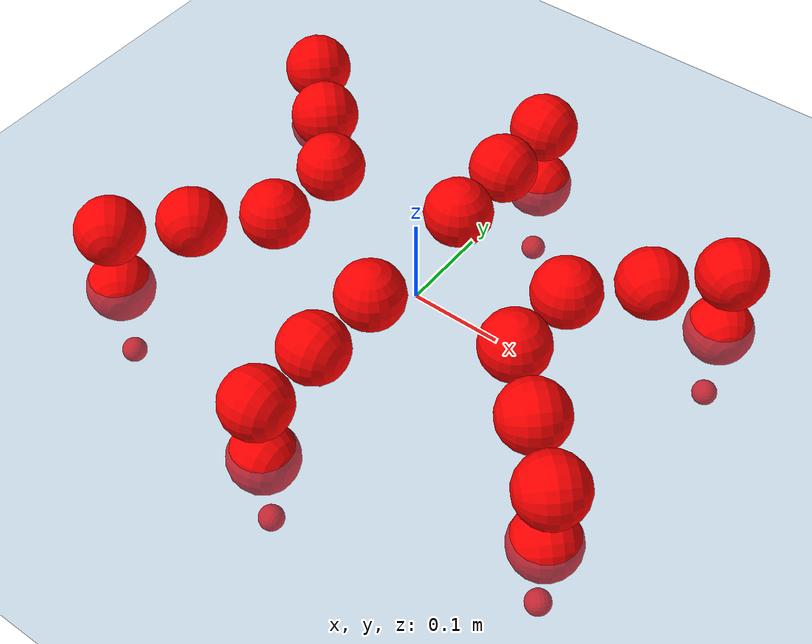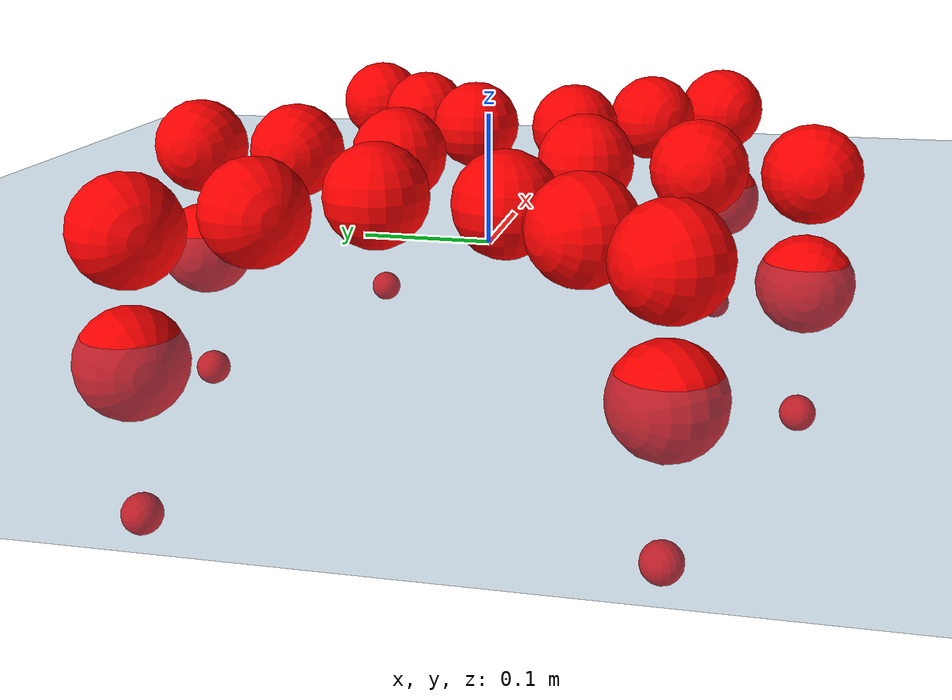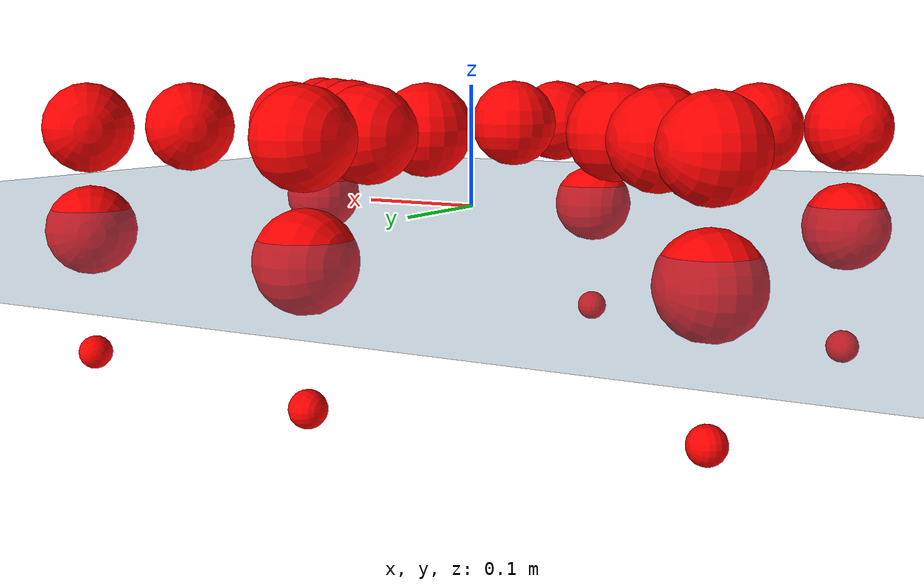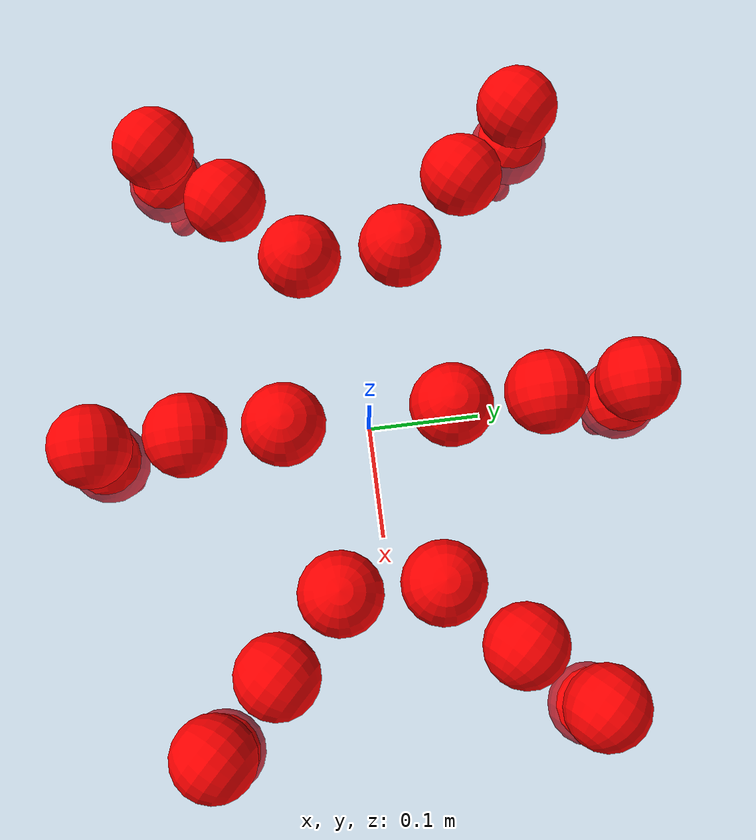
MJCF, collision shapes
<mujoco model="Golem">
  <compiler angle="radian" assetdir="assets" balanceinertia="true" inertiafromgeom="false"/>

  <option timestep="0.005" density="1.2" viscosity="2e-05"/>

  <size nkey="1"/>

  <visual>
    <quality shadowsize="8192"/>
    <map shadowclip="0.5"/>
  </visual>

  <default>
    <default class="/">
      <joint armature="0.01" damping="0.01" frictionloss="0.01"/>
      <geom contype="0" conaffinity="0" group="1" solref="-1000 -80"/>
      <site size="0.01 0.005 0.005" group="5"/>
      <general forcelimited="true" biastype="affine" gainprm="25" biasprm="0 -25 -0.5"/>
      <default class="visual">
        <geom type="mesh" group="2"/>
      </default>
      <default class="collision">
        <geom group="3"/>
      </default>
      <default class="foot">
        <geom size="0.01 0 0" condim="6" group="4" priority="1" solimp="0.015 1 0.01"/>
      </default>
      <default class="reward_collision_sphere">
        <geom group="5" rgba="1 0 0 1"/>
      </default>
    </default>
  </default>

  <asset>
    <texture type="skybox" colorspace="auto" name="//unnamed_texture_0" builtin="gradient" rgb1="0.95 0.95 0.95" rgb2="0.95 0.95 0.95" width="100" height="600"/>
    <texture type="2d" colorspace="auto" name="texplane" builtin="checker" rgb1="0.345 0.575 0.748" rgb2="0.345 0.575 0.748" markrgb="1 1 1" width="512" height="512"/>
    <material name="MatPlane" class="/" texture="texplane" texuniform="true" texrepeat="2 2" specular="0.9"/>
    <mesh name="body" class="/" file="body.stl" scale="0.001 0.001 0.001"/>
    <mesh name="coxa" class="/" file="coxa.stl" scale="0.001 0.001 0.001"/>
    <mesh name="femur" class="/" file="femur.stl" scale="0.001 0.001 0.001"/>
    <mesh name="tibia" class="/" file="tibia.stl" scale="0.001 0.001 0.001"/>
    <mesh name="tarsus" class="/" file="tarsus.stl" scale="0.001 0.001 0.001"/>
  </asset>

  <worldbody>
    <geom name="floor" class="/" size="100 100 0.125" type="plane" group="0" material="MatPlane"/>
    <light name="toplight_shadow" class="/" pos="0 0 5" dir="0.0990148 0.0990148 -0.990148" type="directional" ambient="0.04 0.04 0.04" diffuse="0.55 0.55 0.55" specular="0.12 0.12 0.12"/>
    <light name="toplight_fill" class="/" pos="0 0 5" dir="0.0990148 0.0990148 -0.990148" type="directional" castshadow="false" ambient="0.04 0.04 0.04" diffuse="0.3 0.3 0.3" specular="0.08 0.08 0.08"/>
    <body name="trunk" pos="0.000650327 -0.000283921 -0.000603839" quat="1 6.95367e-05 -3.8084e-06 -7.76978e-05">
      <inertial pos="-0.000570628 -0.000432683 -0.00372317" quat="0.999993 -0.00183926 -0.00192118 0.00281113" mass="2.84727" diaginertia="0.0077599 0.00259854 0.0121342"/>
      <joint name="//unnamed_joint_0" type="free"/>
      <geom name="//unnamed_geom_1" class="/" pos="0 0 0.0666165" quat="1 0 0 0" type="mesh" rgba="0.9 0.9 0.9 1" mesh="body"/>
      <site name="imu" class="/" pos="0.122668 0.000540848 0.105747" size="0.00920004"/>
      <camera name="track" class="/" pos="0 -1.53154 0" quat="0.707107 0.707107 0 0" mode="trackcom"/>
      <camera name="ego_camera" class="/" pos="0.123937 0 0.104088" quat="-0.5 -0.5 0.5 0.5"/>
      <body name="coxa_RR" pos="-0.169983 -0.0637803 0.0660428" quat="0.382682 -7.60961e-06 9.81681e-06 -0.92388">
        <inertial pos="-0.000128167 -0.000478494 7.60125e-05" quat="0.999997 -0.00167725 -0.00179502 -0.000519215" mass="0.15331" diaginertia="0.00784859 0.0025941 0.0120639"/>
        <joint name="coxa_joint_RR" class="/" pos="0 0 0" axis="0.00174195 0.000760386 -0.999998" range="-3.13916 3.15561" armature="0.00960817" damping="0.0101944" frictionloss="0.00925954"/>
        <geom name="//unnamed_geom_2" class="/" type="mesh" rgba="0.2 0.2 0.2 1" mesh="coxa"/>
        <geom name="//unnamed_geom_3" class="reward_collision_sphere" size="0.0368002" pos="-0.0286008 0 0"/>
        <body name="femur_RR" pos="0.0567936 -2.38427e-05 0.000287824" quat="0.499991 -0.500019 0.500391 0.499599">
          <inertial pos="-0.000433202 -0.000895581 0.000829499" quat="1 -0.000574435 0.000110847 0.000175291" mass="0.155781" diaginertia="0.00789911 0.00264679 0.0122311"/>
          <joint name="femur_joint_RR" class="/" pos="0 0 0" axis="-0.000341292 0.000406876 -1" stiffness="0.000988494" range="-3.1306 3.13577" armature="0.00960701" damping="0" frictionloss="0.00882904"/>
          <geom name="//unnamed_geom_4" class="/" type="mesh" rgba="0.9 0.9 0.9 1" mesh="femur"/>
          <geom name="//unnamed_geom_5" class="reward_collision_sphere" size="0.0368002"/>
          <body name="tibia_RR" pos="0.000860985 -0.0830817 0.000610797" quat="-1.66281e-05 1 -0.000345001 -0.000207135">
            <inertial pos="0.000401962 0.000976418 0.000128186" quat="0.999994 0.00277312 0.000810004 0.00184296" mass="0.155796" diaginertia="0.00788925 0.00262514 0.0121176"/>
            <joint name="tibia_joint_RR" class="/" pos="0 0 0" axis="-0.00570697 -0.000171842 0.999984" range="-3.14794 3.14577" armature="0.00951344" damping="0.00173887" frictionloss="0.00916406"/>
            <geom name="//unnamed_geom_6" class="/" type="mesh" rgba="0.2 0.2 0.2 1" mesh="tibia"/>
            <geom name="//unnamed_geom_7" class="reward_collision_sphere" size="0.0368002"/>
            <body name="tarsus_RR" pos="0.0831596 0.000505857 2.05324e-05" quat="1 -8.32077e-05 -6.63851e-05 -7.72096e-05">
              <inertial pos="0.0577949 0.00048343 0.00071834" quat="0.500002 0.499435 0.499702 0.50086" mass="0.156985" diaginertia="0.00790892 0.00262053 0.0122806"/>
              <joint name="tarsus_joint_RR" class="/" pos="0 0 0" axis="0.00170114 0.00188089 0.999997" range="-3.13402 3.13741" armature="0.00883075" damping="0.00860681" frictionloss="0.00893422"/>
              <geom name="//unnamed_geom_8" class="/" type="mesh" rgba="0.9 0.9 0.9 1" mesh="tarsus"/>
              <geom name="foot_1" class="foot" size="0.0093571" pos="0.106776 0 0" quat="0 -0.707107 0 0.707107"/>
              <geom name="//unnamed_geom_10" class="reward_collision_sphere" size="0.0368002"/>
              <geom name="//unnamed_geom_11" class="reward_collision_sphere" size="0.0138001" pos="0.102486 0 0"/>
              <site name="foot_1" class="foot" pos="0.106776 0 0" quat="0 -0.707107 0 0.707107" size="0.00920004"/>
            </body>
          </body>
        </body>
      </body>
      <body name="coxa_RM" pos="-0.000636618 -0.10263 0.0667345" quat="0.707114 -0.000250126 0.000305358 -0.707099">
        <inertial pos="0.000369817 -9.10928e-06 0.000848347" quat="0.999999 0.000789841 0.000361126 0.000870524" mass="0.155523" diaginertia="0.00771879 0.00261932 0.0122305"/>
        <joint name="coxa_joint_RM" class="/" pos="0 0 0" axis="-7.60434e-05 0.000138603 -1" range="-3.15626 3.13781" armature="0.00935124" damping="0.0111171" frictionloss="0.00922263"/>
        <geom name="//unnamed_geom_12" class="/" type="mesh" rgba="0.2 0.2 0.2 1" mesh="coxa"/>
        <geom name="//unnamed_geom_13" class="reward_collision_sphere" size="0.0368002" pos="-0.0286008 0 0"/>
        <body name="femur_RM" pos="0.0564943 -0.00116991 -0.000891569" quat="0.500001 -0.500004 0.500003 0.499992">
          <inertial pos="-0.000457103 0.000348473 -0.000333881" quat="1 0.000155149 0.000155644 -0.000511829" mass="0.154923" diaginertia="0.00783363 0.00263622 0.0121743"/>
          <joint name="femur_joint_RM" class="/" pos="0 0 0" axis="-0.00198014 -0.000447147 -0.999998" range="-3.14053 3.13921" armature="0.00921405" damping="0.0117692" frictionloss="0.00935769"/>
          <geom name="//unnamed_geom_14" class="/" type="mesh" rgba="0.9 0.9 0.9 1" mesh="femur"/>
          <geom name="//unnamed_geom_15" class="reward_collision_sphere" size="0.0368002"/>
          <body name="tibia_RM" pos="0.000753486 -0.0820813 -0.000417481" quat="-3.62067e-05 1 2.00304e-05 0.000241123">
            <inertial pos="0.000370535 0.000193322 -0.000182748" quat="0.999997 0.00156182 -4.80452e-05 0.00191132" mass="0.156655" diaginertia="0.00791451 0.00264858 0.0121631"/>
            <joint name="tibia_joint_RM" class="/" pos="0 0 0" axis="-0.00305181 0.00124754 0.999995" range="-3.15645 3.11507" armature="0.00893752" damping="0" frictionloss="0.0090559"/>
            <geom name="//unnamed_geom_16" class="/" type="mesh" rgba="0.2 0.2 0.2 1" mesh="tibia"/>
            <geom name="//unnamed_geom_17" class="reward_collision_sphere" size="0.0368002"/>
            <body name="tarsus_RM" pos="0.0831762 -0.000598825 -0.000517074" quat="1 7.46318e-05 0.000140889 0.00033607">
              <inertial pos="0.0566508 0.000830741 2.52718e-05" quat="0.499972 0.499925 0.500086 0.500017" mass="0.155562" diaginertia="0.00794092 0.00267566 0.0124517"/>
              <joint name="tarsus_joint_RM" class="/" pos="0 0 0" axis="0.00316722 -0.0046707 0.999984" range="-3.14118 3.12881" armature="0.00877301" damping="0.00421764" frictionloss="0.00916937"/>
              <geom name="//unnamed_geom_18" class="/" type="mesh" rgba="0.9 0.9 0.9 1" mesh="tarsus"/>
              <geom name="foot_2" class="foot" size="0.00911069" pos="0.106776 0 0" quat="0 -0.707107 0 0.707107"/>
              <geom name="//unnamed_geom_20" class="reward_collision_sphere" size="0.0368002"/>
              <geom name="//unnamed_geom_21" class="reward_collision_sphere" size="0.0138001" pos="0.102486 0 0"/>
              <site name="foot_2" class="foot" pos="0.106776 0 0" quat="0 -0.707107 0 0.707107" size="0.00920004"/>
            </body>
          </body>
        </body>
      </body>
      <body name="coxa_RF" pos="0.16867 -0.0627756 0.0671066" quat="0.923953 0.000249851 -0.000242541 -0.382505">
        <inertial pos="0.000166213 0.000450314 3.30602e-05" quat="0.99999 0.00371296 0.00168461 0.00187744" mass="0.158229" diaginertia="0.00807931 0.00263151 0.0125302"/>
        <joint name="coxa_joint_RF" class="/" pos="0 0 0" axis="0.00083139 -0.0063131 -0.99998" range="-3.12103 3.13641" armature="0.00946555" damping="0.00525413" frictionloss="0.00877993"/>
        <geom name="//unnamed_geom_22" class="/" type="mesh" rgba="0.2 0.2 0.2 1" mesh="coxa"/>
        <geom name="//unnamed_geom_23" class="reward_collision_sphere" size="0.0368002" pos="-0.0286008 0 0"/>
        <body name="femur_RF" pos="0.0568287 0.000693315 0.000650746" quat="0.500044 -0.499965 0.499979 0.500012">
          <inertial pos="-9.45924e-05 0.00066011 0.000279052" quat="1 0.000375871 -0.00012277 -0.000710529" mass="0.154362" diaginertia="0.00781886 0.00259705 0.0122046"/>
          <joint name="femur_joint_RF" class="/" pos="0 0 0" axis="-0.00118899 0.00023078 -0.999999" range="-3.14686 3.1307" armature="0.00872513" damping="0.0123744" frictionloss="0.00880518"/>
          <geom name="//unnamed_geom_24" class="/" type="mesh" rgba="0.9 0.9 0.9 1" mesh="femur"/>
          <geom name="//unnamed_geom_25" class="reward_collision_sphere" size="0.0368002"/>
          <body name="tibia_RF" pos="5.07325e-05 -0.0822756 9.96466e-05" quat="4.74787e-07 1 -1.10204e-06 1.0567e-05">
            <inertial pos="-0.000228894 -0.000273924 -8.08202e-05" quat="0.999999 -0.000376769 -0.000779876 0.00130452" mass="0.157283" diaginertia="0.00802097 0.00266297 0.0123658"/>
            <joint name="tibia_joint_RF" class="/" pos="0 0 0" axis="-0.0016552 -0.0026596 0.999995" stiffness="0.000493406" range="-3.15732 3.13244" armature="0.00925592" damping="0" frictionloss="0.00878193"/>
            <geom name="//unnamed_geom_26" class="/" type="mesh" rgba="0.2 0.2 0.2 1" mesh="tibia"/>
            <geom name="//unnamed_geom_27" class="reward_collision_sphere" size="0.0368002"/>
            <body name="tarsus_RF" pos="0.0830616 0.000289751 0.000743529" quat="1 0.000167887 0.000233191 -0.000350613">
              <inertial pos="0.0570909 0.00112774 0.000119197" quat="0.496137 0.498758 0.502751 0.502324" mass="0.158233" diaginertia="0.0079587 0.00263158 0.0122346"/>
              <joint name="tarsus_joint_RF" class="/" pos="0 0 0" axis="-0.000527722 0.000669752 1" range="-3.148 3.13609" armature="0.00898036" damping="0.00842551" frictionloss="0.00929713"/>
              <geom name="//unnamed_geom_28" class="/" type="mesh" rgba="0.9 0.9 0.9 1" mesh="tarsus"/>
              <geom name="foot_3" class="foot" size="0.00916905" pos="0.106776 0 0" quat="0 -0.707107 0 0.707107"/>
              <geom name="//unnamed_geom_30" class="reward_collision_sphere" size="0.0368002"/>
              <geom name="//unnamed_geom_31" class="reward_collision_sphere" size="0.0138001" pos="0.102486 0 0"/>
              <site name="foot_3" class="foot" pos="0.106776 0 0" quat="0 -0.707107 0 0.707107" size="0.00920004"/>
            </body>
          </body>
        </body>
      </body>
      <body name="coxa_LR" pos="-0.168682 0.0660897 0.0674265" quat="0.382847 6.22577e-05 9.13864e-06 0.923812">
        <inertial pos="-0.000236469 -0.000263736 0.00116574" quat="0.999997 -0.000993208 0.00216166 -0.000734843" mass="0.157777" diaginertia="0.00782422 0.00264931 0.0122049"/>
        <joint name="coxa_joint_LR" class="/" pos="0 0 0" axis="-0.00163176 0.0018908 -0.999997" range="-3.1406 3.12523" armature="0.00895458" damping="0.00972839" frictionloss="0.00912026"/>
        <geom name="//unnamed_geom_32" class="/" type="mesh" rgba="0.2 0.2 0.2 1" mesh="coxa"/>
        <geom name="//unnamed_geom_33" class="reward_collision_sphere" size="0.0368002" pos="-0.0286008 0 0"/>
        <body name="femur_LR" pos="0.0584054 -0.00220175 -0.000974267" quat="0.500174 -0.499775 0.500213 0.499838">
          <inertial pos="-7.63951e-05 -0.000612669 0.000190838" quat="1 6.48304e-05 -8.92828e-06 1.03588e-05" mass="0.154725" diaginertia="0.00771284 0.00260645 0.0120931"/>
          <joint name="femur_joint_LR" class="/" pos="0 0 0" axis="0.00022542 0.00206868 0.999998" range="-3.12368 3.15252" armature="0.00976501" damping="0.0107824" frictionloss="0.00933125"/>
          <geom name="//unnamed_geom_34" class="/" type="mesh" rgba="0.9 0.9 0.9 1" mesh="femur"/>
          <geom name="//unnamed_geom_35" class="reward_collision_sphere" size="0.0368002"/>
          <body name="tibia_LR" pos="0.000816775 -0.0843147 -0.000385789" quat="-5.99824e-05 1 7.04528e-05 -6.07531e-05">
            <inertial pos="-0.000308788 -9.0796e-05 0.000159892" quat="0.999992 0.000605131 0.00404783 -0.00027815" mass="0.158502" diaginertia="0.00804382 0.00262987 0.0122433"/>
            <joint name="tibia_joint_LR" class="/" pos="0 0 0" axis="0.00193682 0.000404828 -0.999998" range="-3.14221 3.13848" armature="0.00921871" damping="0.00309545" frictionloss="0.00882118"/>
            <geom name="//unnamed_geom_36" class="/" type="mesh" rgba="0.2 0.2 0.2 1" mesh="tibia"/>
            <geom name="//unnamed_geom_37" class="reward_collision_sphere" size="0.0368002"/>
            <body name="tarsus_LR" pos="0.0853619 0.00161011 0.00130354" quat="1 -0.000235887 0.000240026 0.000323888">
              <inertial pos="0.0593174 -0.000465626 0.000687985" quat="0.500674 0.498916 0.500758 0.499649" mass="0.157473" diaginertia="0.00786591 0.00260277 0.0122838"/>
              <joint name="tarsus_joint_LR" class="/" pos="0 0 0" axis="0.00083633 -0.00423513 -0.999991" range="-3.12738 3.13896" armature="0.00934812" damping="0.0268847" frictionloss="0.00932895"/>
              <geom name="//unnamed_geom_38" class="/" type="mesh" rgba="0.9 0.9 0.9 1" mesh="tarsus"/>
              <geom name="foot_4" class="foot" size="0.00937147" pos="0.106776 0 0" quat="0.707107 0 -0.707107 0"/>
              <geom name="//unnamed_geom_40" class="reward_collision_sphere" size="0.0368002"/>
              <geom name="//unnamed_geom_41" class="reward_collision_sphere" size="0.0138001" pos="0.102486 0 0"/>
              <site name="foot_4" class="foot" pos="0.106776 0 0" quat="0.707107 0 -0.707107 0" size="0.00920004"/>
            </body>
          </body>
        </body>
      </body>
      <body name="coxa_LM" pos="-8.65862e-05 0.100321 0.0668146" quat="0.707035 0.00042337 -0.000159225 0.707178">
        <inertial pos="-0.000621267 -0.000169322 -0.000156521" quat="0.999991 0.00344867 0.00237636 0.000286202" mass="0.156805" diaginertia="0.00786401 0.00266295 0.0122997"/>
        <joint name="coxa_joint_LM" class="/" pos="0 0 0" axis="0.000990745 0.00057519 -0.999999" range="-3.15216 3.15516" armature="0.00924398" damping="0.00885456" frictionloss="0.00910443"/>
        <geom name="//unnamed_geom_42" class="/" type="mesh" rgba="0.2 0.2 0.2 1" mesh="coxa"/>
        <geom name="//unnamed_geom_43" class="reward_collision_sphere" size="0.0368002" pos="-0.0286008 0 0"/>
        <body name="femur_LM" pos="0.0542506 0.00108167 6.6689e-05" quat="0.500026 -0.499967 0.499987 0.50002">
          <inertial pos="-0.000871225 -0.000679214 0.000789066" quat="1 -0.000108417 5.7636e-05 -0.000239832" mass="0.155541" diaginertia="0.00777882 0.00261839 0.01206"/>
          <joint name="femur_joint_LM" class="/" pos="0 0 0" axis="-0.0056553 -0.00198123 0.999982" range="-3.14535 3.13509" armature="0.00916325" damping="0.0015252" frictionloss="0.00882117"/>
          <geom name="//unnamed_geom_44" class="/" type="mesh" rgba="0.9 0.9 0.9 1" mesh="femur"/>
          <geom name="//unnamed_geom_45" class="reward_collision_sphere" size="0.0368002"/>
          <body name="tibia_LM" pos="-0.000944003 -0.0795932 0.00151498" quat="9.21245e-06 1 -4.18351e-05 -2.35798e-05">
            <inertial pos="-0.00116653 -0.000454024 -0.000232786" quat="0.999999 -0.000125287 0.000802603 0.00112667" mass="0.153015" diaginertia="0.00776877 0.00257661 0.0119402"/>
            <joint name="tibia_joint_LM" class="/" pos="0 0 0" axis="0.00602468 -0.00017282 -0.999982" range="-3.13544 3.13694" armature="0.00914519" damping="0.00293179" frictionloss="0.00925108"/>
            <geom name="//unnamed_geom_46" class="/" type="mesh" rgba="0.2 0.2 0.2 1" mesh="tibia"/>
            <geom name="//unnamed_geom_47" class="reward_collision_sphere" size="0.0368002"/>
            <body name="tarsus_LM" pos="0.0837249 -0.000356115 -0.000526849" quat="1 8.19915e-05 7.12148e-05 0.000232449">
              <inertial pos="0.0575811 -0.00119164 -0.000468036" quat="0.4997 0.503307 0.498451 0.498527" mass="0.156943" diaginertia="0.00779672 0.00261662 0.0121825"/>
              <joint name="tarsus_joint_LM" class="/" pos="0 0 0" axis="-0.00116681 0.00135483 -0.999998" range="-3.13698 3.13225" armature="0.00924266" damping="0" frictionloss="0.0092387"/>
              <geom name="//unnamed_geom_48" class="/" type="mesh" rgba="0.9 0.9 0.9 1" mesh="tarsus"/>
              <geom name="foot_5" class="foot" size="0.00894593" pos="0.106776 0 0" quat="0.707107 0 -0.707107 0"/>
              <geom name="//unnamed_geom_50" class="reward_collision_sphere" size="0.0368002"/>
              <geom name="//unnamed_geom_51" class="reward_collision_sphere" size="0.0138001" pos="0.102486 0 0"/>
              <site name="foot_5" class="foot" pos="0.106776 0 0" quat="0.707107 0 -0.707107 0" size="0.00920004"/>
            </body>
          </body>
        </body>
      </body>
      <body name="coxa_LF" pos="0.17025 0.0647797 0.0664635" quat="0.923919 0.000186623 4.89961e-05 0.382589">
        <inertial pos="-0.000123298 -0.000103857 -0.000163614" quat="0.999999 -0.00026574 -0.000682465 0.00115073" mass="0.156435" diaginertia="0.00783182 0.00260823 0.0122897"/>
        <joint name="coxa_joint_LF" class="/" pos="0 0 0" axis="0.000711872 0.00160067 -0.999998" range="-3.12835 3.14126" armature="0.00926568" damping="0" frictionloss="0.00937207"/>
        <geom name="//unnamed_geom_52" class="/" type="mesh" rgba="0.2 0.2 0.2 1" mesh="coxa"/>
        <geom name="//unnamed_geom_53" class="reward_collision_sphere" size="0.0368002" pos="-0.0286008 0 0"/>
        <body name="femur_LF" pos="0.056562 0.000668874 -0.000582562" quat="0.500118 -0.499994 0.499829 0.500059">
          <inertial pos="-0.000237886 -0.000316762 0.000195325" quat="0.999991 0.00181565 0.000243311 0.00370817" mass="0.157935" diaginertia="0.00792485 0.00261904 0.0121998"/>
          <joint name="femur_joint_LF" class="/" pos="0 0 0" axis="0.00178049 -0.0012747 0.999998" range="-3.13533 3.13695" armature="0.00908172" damping="0" frictionloss="0.00917223"/>
          <geom name="//unnamed_geom_54" class="/" type="mesh" rgba="0.9 0.9 0.9 1" mesh="femur"/>
          <geom name="//unnamed_geom_55" class="reward_collision_sphere" size="0.0368002"/>
          <body name="tibia_LF" pos="-0.00018494 -0.0816903 0.000570746" quat="-0.000127202 1 0.000129365 -0.000171463">
            <inertial pos="0.000363381 0.000562878 -0.000242587" quat="0.999998 -0.00099721 0.00194888 -0.000145984" mass="0.154209" diaginertia="0.00783066 0.00264195 0.012234"/>
            <joint name="tibia_joint_LF" class="/" pos="0 0 0" axis="0.00102611 0.000755322 -0.999999" range="-3.1179 3.12596" armature="0.00918342" damping="0.000797534" frictionloss="0.00918831"/>
            <geom name="//unnamed_geom_56" class="/" type="mesh" rgba="0.2 0.2 0.2 1" mesh="tibia"/>
            <geom name="//unnamed_geom_57" class="reward_collision_sphere" size="0.0368002"/>
            <body name="tarsus_LF" pos="0.0838946 -1.38283e-06 -0.000833176" quat="1 -0.000382916 0.000167584 -2.54135e-05">
              <inertial pos="0.0568726 0.000241038 0.000151074" quat="0.500141 0.499781 0.499902 0.500175" mass="0.158691" diaginertia="0.00801397 0.00268405 0.0124198"/>
              <joint name="tarsus_joint_LF" class="/" pos="0 0 0" axis="0.000251813 -0.000229074 -1" range="-3.13748 3.14639" armature="0.00921126" damping="0.0172555" frictionloss="0.00963604"/>
              <geom name="//unnamed_geom_58" class="/" type="mesh" rgba="0.9 0.9 0.9 1" mesh="tarsus"/>
              <geom name="foot_6" class="foot" size="0.00926457" pos="0.106776 0 0" quat="0.707107 0 -0.707107 0"/>
              <geom name="//unnamed_geom_60" class="reward_collision_sphere" size="0.0368002"/>
              <geom name="//unnamed_geom_61" class="reward_collision_sphere" size="0.0138001" pos="0.102486 0 0"/>
              <site name="foot_6" class="foot" pos="0.106776 0 0" quat="0.707107 0 -0.707107 0" size="0.00920004"/>
            </body>
          </body>
        </body>
      </body>
    </body>
  </worldbody>

  <contact>
    <pair class="/" geom1="floor" geom2="foot_1" name="//unnamed_contact_0"/>
    <pair class="/" geom1="floor" geom2="foot_2" name="//unnamed_contact_1"/>
    <pair class="/" geom1="floor" geom2="foot_3" name="//unnamed_contact_2"/>
    <pair class="/" geom1="floor" geom2="foot_4" name="//unnamed_contact_3"/>
    <pair class="/" geom1="floor" geom2="foot_5" name="//unnamed_contact_4"/>
    <pair class="/" geom1="floor" geom2="foot_6" name="//unnamed_contact_5"/>
  </contact>

  <actuator>
    <general name="coxa_joint_RR" class="/" joint="coxa_joint_RR" forcerange="-6.48848 6.48848" gainprm="22.4197" biasprm="0 -22.4197 -0.48107"/>
    <general name="femur_joint_RR" class="/" joint="femur_joint_RR" forcerange="-6.53933 6.53933" gainprm="22.4197" biasprm="0 -22.4197 -0.48107"/>
    <general name="tibia_joint_RR" class="/" joint="tibia_joint_RR" forcerange="-6.87131 6.87131" gainprm="22.4197" biasprm="0 -22.4197 -0.48107"/>
    <general name="tarsus_joint_RR" class="/" joint="tarsus_joint_RR" forcerange="-6.81348 6.81348" gainprm="22.4197" biasprm="0 -22.4197 -0.48107"/>
    <general name="coxa_joint_RM" class="/" joint="coxa_joint_RM" forcerange="-6.6488 6.6488" gainprm="22.4197" biasprm="0 -22.4197 -0.48107"/>
    <general name="femur_joint_RM" class="/" joint="femur_joint_RM" forcerange="-6.83951 6.83951" gainprm="22.4197" biasprm="0 -22.4197 -0.48107"/>
    <general name="tibia_joint_RM" class="/" joint="tibia_joint_RM" forcerange="-6.66636 6.66636" gainprm="22.4197" biasprm="0 -22.4197 -0.48107"/>
    <general name="tarsus_joint_RM" class="/" joint="tarsus_joint_RM" forcerange="-6.79417 6.79417" gainprm="22.4197" biasprm="0 -22.4197 -0.48107"/>
    <general name="coxa_joint_RF" class="/" joint="coxa_joint_RF" forcerange="-6.69206 6.69206" gainprm="22.4197" biasprm="0 -22.4197 -0.48107"/>
    <general name="femur_joint_RF" class="/" joint="femur_joint_RF" forcerange="-6.97968 6.97968" gainprm="22.4197" biasprm="0 -22.4197 -0.48107"/>
    <general name="tibia_joint_RF" class="/" joint="tibia_joint_RF" forcerange="-6.81574 6.81574" gainprm="22.4197" biasprm="0 -22.4197 -0.48107"/>
    <general name="tarsus_joint_RF" class="/" joint="tarsus_joint_RF" forcerange="-6.73592 6.73592" gainprm="22.4197" biasprm="0 -22.4197 -0.48107"/>
    <general name="coxa_joint_LR" class="/" joint="coxa_joint_LR" forcerange="-6.72596 6.72596" gainprm="22.4197" biasprm="0 -22.4197 -0.48107"/>
    <general name="femur_joint_LR" class="/" joint="femur_joint_LR" forcerange="-6.76129 6.76129" gainprm="22.4197" biasprm="0 -22.4197 -0.48107"/>
    <general name="tibia_joint_LR" class="/" joint="tibia_joint_LR" forcerange="-6.94196 6.94196" gainprm="22.4197" biasprm="0 -22.4197 -0.48107"/>
    <general name="tarsus_joint_LR" class="/" joint="tarsus_joint_LR" forcerange="-6.81333 6.81333" gainprm="22.4197" biasprm="0 -22.4197 -0.48107"/>
    <general name="coxa_joint_LM" class="/" joint="coxa_joint_LM" forcerange="-6.63769 6.63769" gainprm="22.4197" biasprm="0 -22.4197 -0.48107"/>
    <general name="femur_joint_LM" class="/" joint="femur_joint_LM" forcerange="-6.70451 6.70451" gainprm="22.4197" biasprm="0 -22.4197 -0.48107"/>
    <general name="tibia_joint_LM" class="/" joint="tibia_joint_LM" forcerange="-6.73047 6.73047" gainprm="22.4197" biasprm="0 -22.4197 -0.48107"/>
    <general name="tarsus_joint_LM" class="/" joint="tarsus_joint_LM" forcerange="-6.81707 6.81707" gainprm="22.4197" biasprm="0 -22.4197 -0.48107"/>
    <general name="coxa_joint_LF" class="/" joint="coxa_joint_LF" forcerange="-6.75408 6.75408" gainprm="22.4197" biasprm="0 -22.4197 -0.48107"/>
    <general name="femur_joint_LF" class="/" joint="femur_joint_LF" forcerange="-6.70827 6.70827" gainprm="22.4197" biasprm="0 -22.4197 -0.48107"/>
    <general name="tibia_joint_LF" class="/" joint="tibia_joint_LF" forcerange="-6.64023 6.64023" gainprm="22.4197" biasprm="0 -22.4197 -0.48107"/>
    <general name="tarsus_joint_LF" class="/" joint="tarsus_joint_LF" forcerange="-6.70781 6.70781" gainprm="22.4197" biasprm="0 -22.4197 -0.48107"/>
  </actuator>

  <sensor>
    <gyro site="imu" name="imu_angular_velocity"/>
    <velocimeter site="imu" name="imu_linear_velocity"/>
    <framelinvel objtype="site" objname="foot_1" name="foot_1_global_linear_velocity"/>
    <framelinvel objtype="site" objname="foot_2" name="foot_2_global_linear_velocity"/>
    <framelinvel objtype="site" objname="foot_3" name="foot_3_global_linear_velocity"/>
    <framelinvel objtype="site" objname="foot_4" name="foot_4_global_linear_velocity"/>
    <framelinvel objtype="site" objname="foot_5" name="foot_5_global_linear_velocity"/>
    <framelinvel objtype="site" objname="foot_6" name="foot_6_global_linear_velocity"/>
  </sensor>

  <keyframe>
    <key name="home" qpos="0 0 0.1457 1 0 0 0 0 0 0 0 0 0 0 0 0 0 0 0 0 0 0 0 0 0 0 0 0 0 0 0"/>
  </keyframe>
</mujoco>
